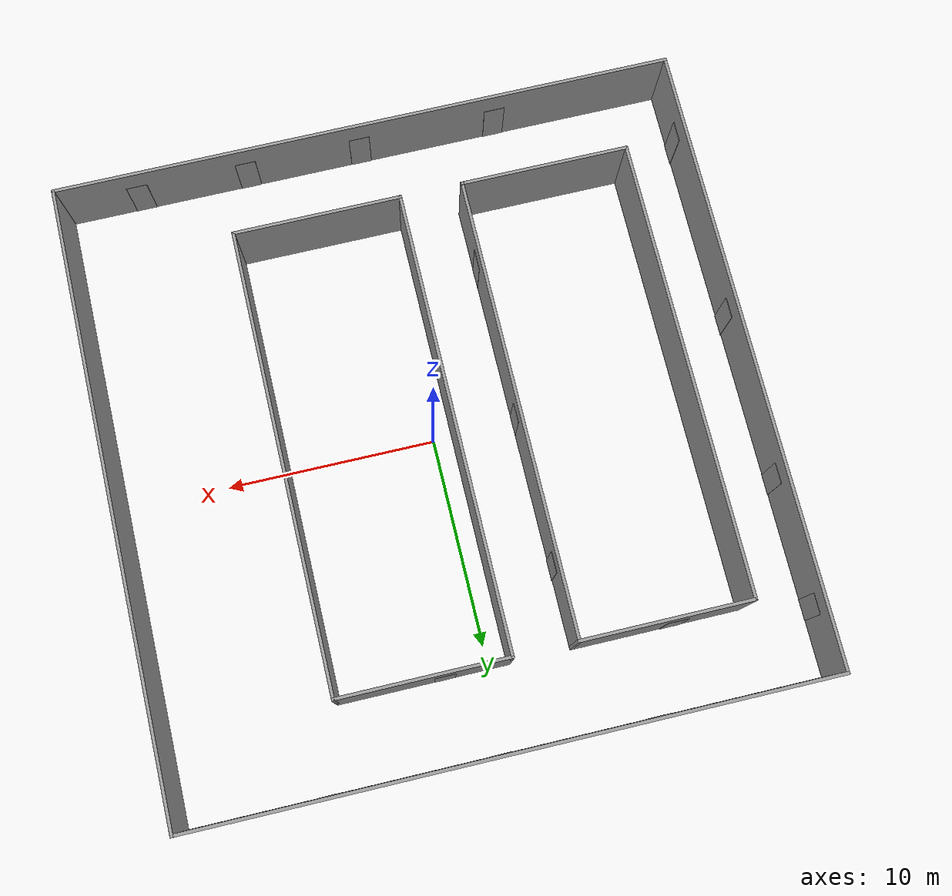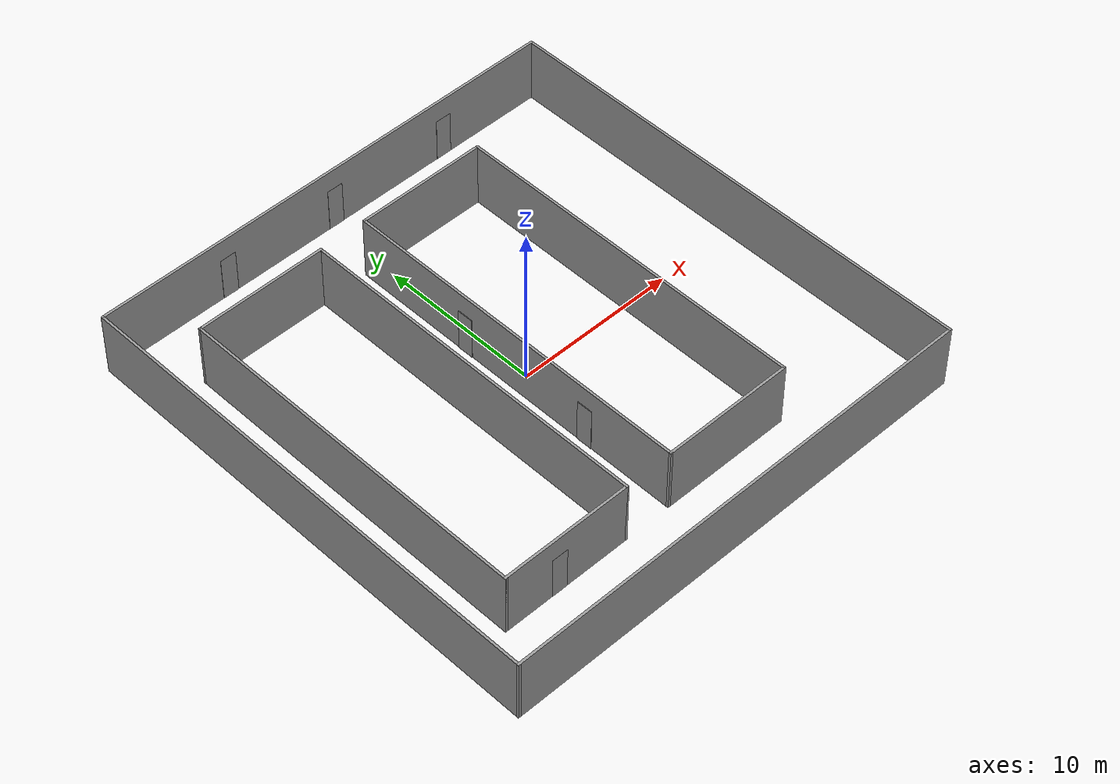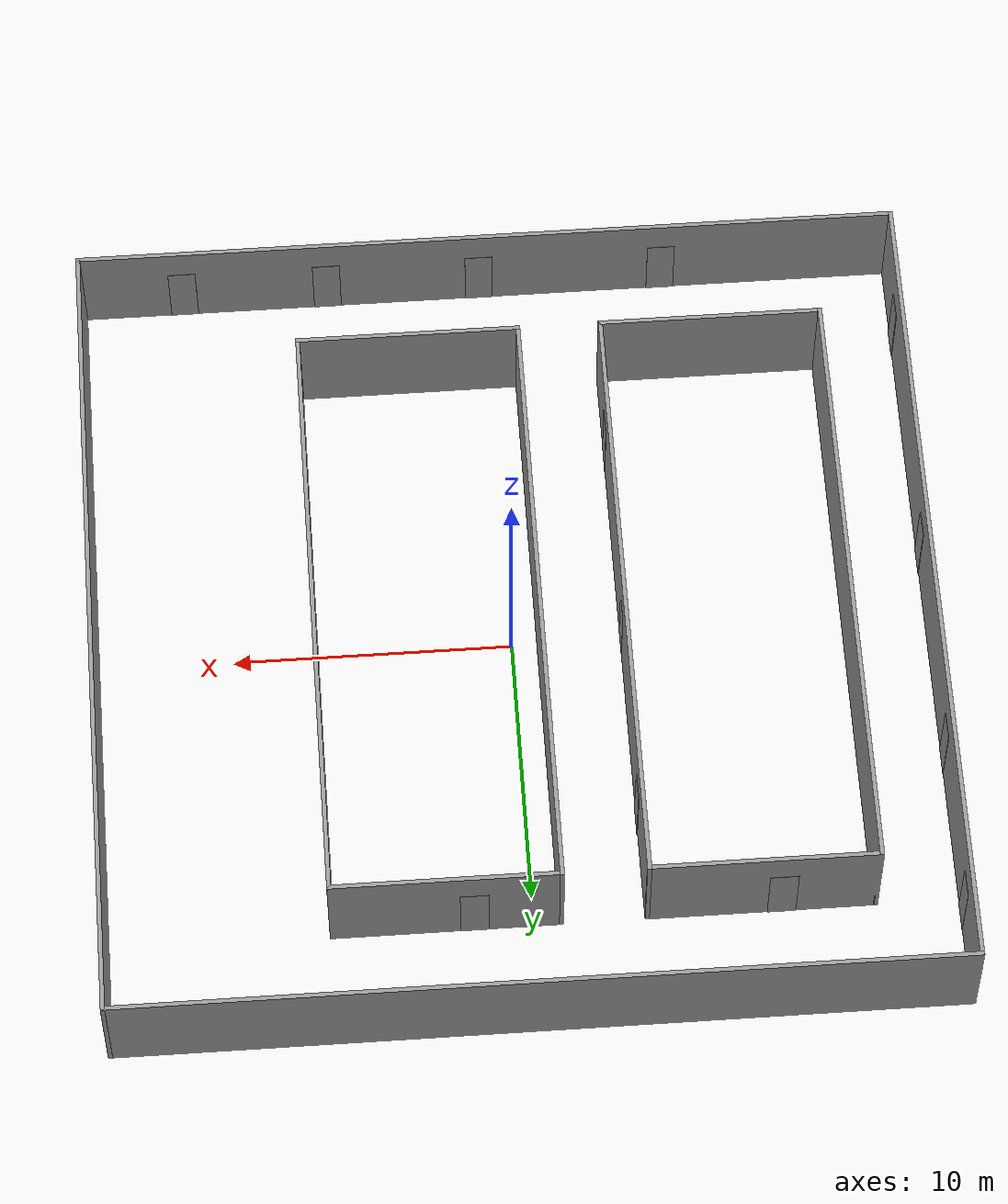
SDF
<sdf version="1.7">
 <world name="default">
  <model name="ground_plane">
   <static>1</static>
   <link name="link">
    <collision name="collision">
     <geometry><plane><normal>0 0 1</normal><size>30 30</size></plane></geometry>
     <surface>
      <contact><collide_bitmask>65535</collide_bitmask></contact>
      <friction><ode><mu>100</mu><mu2>50</mu2></ode></friction>
     </surface>
    </collision>
    <visual name="visual">
     <cast_shadows>0</cast_shadows>
     <geometry><plane><normal>0 0 1</normal><size>30 30</size></plane></geometry>
     <material>
      <script><uri>file://media/materials/scripts/gazebo.material</uri><name>Gazebo/White</name></script>
      <ambient>1 1 1 1</ambient>
      <diffuse>1 1 1 1</diffuse>
      <emissive>1 1 1 1</emissive>
     </material>
    </visual>
   </link>
  </model>
  <gravity>0 0 -9.8</gravity>
  <magnetic_field>6e-06 2.3e-05 -4.2e-05</magnetic_field>
  <atmosphere type="adiabatic"/>
  <physics type="ode">
   <max_step_size>0.001</max_step_size>
   <real_time_factor>1</real_time_factor>
   <real_time_update_rate>1000</real_time_update_rate>
  </physics>
  <scene>
   <ambient>0.6 0.6 0.6 1</ambient>
   <background>0.7 0.7 0.7 1</background>
   <shadows>0</shadows>
   <grid>0</grid>
  </scene>
  <spherical_coordinates>
   <surface_model>EARTH_WGS84</surface_model>
   <latitude_deg>0</latitude_deg>
   <longitude_deg>0</longitude_deg>
   <elevation>0</elevation>
   <heading_deg>0</heading_deg>
  </spherical_coordinates>
  <model name="hospital_wall">
   <static>1</static>
   <link name="Wall_10">
    <collision name="Wall_10_Collision">
     <geometry><box><size>30.15 0.15 4</size></box></geometry>
     <pose>0 0 2 0 -0 0</pose>
    </collision>
    <visual name="Wall_10_Visual">
     <pose>0 0 2 0 -0 0</pose>
     <geometry><box><size>30.15 0.15 4</size></box></geometry>
     <material>
      <script><uri>file://media/materials/scripts/gazebo.material</uri><name>Gazebo/Grey</name></script>
      <ambient>1 1 1 1</ambient>
     </material>
     <meta><layer>0</layer></meta>
    </visual>
    <pose>-14.9625 0 0 0 -0 1.5708</pose>
   </link>
   <link name="Wall_12">
    <collision name="Wall_12_Collision">
     <geometry><box><size>22.15 0.15 4</size></box></geometry>
     <pose>0 0 2 0 -0 0</pose>
    </collision>
    <visual name="Wall_12_Visual">
     <pose>0 0 2 0 -0 0</pose>
     <geometry><box><size>22.15 0.15 4</size></box></geometry>
     <material>
      <script><uri>file://media/materials/scripts/gazebo.material</uri><name>Gazebo/Grey</name></script>
      <ambient>1 1 1 1</ambient>
     </material>
     <meta><layer>0</layer></meta>
    </visual>
    <pose>7.0375 0 0 0 -0 -1.5708</pose>
   </link>
   <link name="Wall_13">
    <collision name="Wall_13_Collision">
     <geometry><box><size>8.15 0.15 4</size></box></geometry>
     <pose>0 0 2 0 -0 0</pose>
    </collision>
    <visual name="Wall_13_Visual">
     <pose>0 0 2 0 -0 0</pose>
     <geometry><box><size>8.15 0.15 4</size></box></geometry>
     <material>
      <script><uri>file://media/materials/scripts/gazebo.material</uri><name>Gazebo/Grey</name></script>
      <ambient>1 1 1 1</ambient>
     </material>
     <meta><layer>0</layer></meta>
    </visual>
    <pose>3.0375 -11 0 0 -0 3.14159</pose>
   </link>
   <link name="Wall_14">
    <collision name="Wall_14_Collision">
     <geometry><box><size>22.15 0.15 4</size></box></geometry>
     <pose>0 0 2 0 -0 0</pose>
    </collision>
    <visual name="Wall_14_Visual">
     <pose>0 0 2 0 -0 0</pose>
     <geometry><box><size>22.15 0.15 4</size></box></geometry>
     <material>
      <script><uri>file://media/materials/scripts/gazebo.material</uri><name>Gazebo/Grey</name></script>
      <ambient>1 1 1 1</ambient>
     </material>
     <meta><layer>0</layer></meta>
    </visual>
    <pose>-0.962499 0 0 0 -0 1.5708</pose>
   </link>
   <link name="Wall_15">
    <collision name="Wall_15_Collision">
     <geometry><box><size>8.15 0.15 4</size></box></geometry>
     <pose>0 0 2 0 -0 0</pose>
    </collision>
    <visual name="Wall_15_Visual">
     <pose>0 0 2 0 -0 0</pose>
     <geometry><box><size>8.15 0.15 4</size></box></geometry>
     <material>
      <script><uri>file://media/materials/scripts/gazebo.material</uri><name>Gazebo/Grey</name></script>
      <ambient>1 1 1 1</ambient>
     </material>
     <meta><layer>0</layer></meta>
    </visual>
    <pose>3.0375 11 0 0 -0 0</pose>
   </link>
   <link name="Wall_17">
    <collision name="Wall_17_Collision">
     <geometry><box><size>22.15 0.15 4</size></box></geometry>
     <pose>0 0 2 0 -0 0</pose>
    </collision>
    <visual name="Wall_17_Visual">
     <pose>0 0 2 0 -0 0</pose>
     <geometry><box><size>22.15 0.15 4</size></box></geometry>
     <material>
      <script><uri>file://media/materials/scripts/gazebo.material</uri><name>Gazebo/Grey</name></script>
      <ambient>1 1 1 1</ambient>
     </material>
     <meta><layer>0</layer></meta>
    </visual>
    <pose>-11.9625 0 0 0 -0 -1.5708</pose>
   </link>
   <link name="Wall_18">
    <collision name="Wall_18_Collision">
     <geometry><box><size>8.15 0.15 4</size></box></geometry>
     <pose>0 0 2 0 -0 0</pose>
    </collision>
    <visual name="Wall_18_Visual">
     <pose>0 0 2 0 -0 0</pose>
     <geometry><box><size>8.15 0.15 4</size></box></geometry>
     <material>
      <script><uri>file://media/materials/scripts/gazebo.material</uri><name>Gazebo/Grey</name></script>
      <ambient>1 1 1 1</ambient>
     </material>
     <meta><layer>0</layer></meta>
    </visual>
    <pose>-7.9625 -11 0 0 -0 0</pose>
   </link>
   <link name="Wall_19">
    <collision name="Wall_19_Collision">
     <geometry><box><size>22.15 0.15 4</size></box></geometry>
     <pose>0 0 2 0 -0 0</pose>
    </collision>
    <visual name="Wall_19_Visual">
     <pose>0 0 2 0 -0 0</pose>
     <geometry><box><size>22.15 0.15 4</size></box></geometry>
     <material>
      <script><uri>file://media/materials/scripts/gazebo.material</uri><name>Gazebo/Grey</name></script>
      <ambient>1 1 1 1</ambient>
     </material>
     <meta><layer>0</layer></meta>
    </visual>
    <pose>-3.9625 0 0 0 -0 1.5708</pose>
   </link>
   <link name="Wall_2">
    <collision name="Wall_2_Collision">
     <geometry><box><size>30 0.15 4</size></box></geometry>
     <pose>0 0 2 0 -0 0</pose>
    </collision>
    <visual name="Wall_2_Visual">
     <pose>0 0 2 0 -0 0</pose>
     <geometry><box><size>30 0.15 4</size></box></geometry>
     <material>
      <script><uri>file://media/materials/scripts/gazebo.material</uri><name>Gazebo/Grey</name></script>
      <ambient>1 1 1 1</ambient>
     </material>
     <meta><layer>0</layer></meta>
    </visual>
    <pose>-0.037498 15 0 0 -0 3.14159</pose>
   </link>
   <link name="Wall_20">
    <collision name="Wall_20_Collision">
     <geometry><box><size>8.15 0.15 4</size></box></geometry>
     <pose>0 0 2 0 -0 0</pose>
    </collision>
    <visual name="Wall_20_Visual">
     <pose>0 0 2 0 -0 0</pose>
     <geometry><box><size>8.15 0.15 4</size></box></geometry>
     <material>
      <script><uri>file://media/materials/scripts/gazebo.material</uri><name>Gazebo/Grey</name></script>
      <ambient>1 1 1 1</ambient>
     </material>
     <meta><layer>0</layer></meta>
    </visual>
    <pose>-7.9625 11 0 0 -0 3.14159</pose>
   </link>
   <link name="Wall_8">
    <collision name="Wall_8_Collision">
     <geometry><box><size>30.15 0.15 4</size></box></geometry>
     <pose>0 0 2 0 -0 0</pose>
    </collision>
    <visual name="Wall_8_Visual">
     <pose>0 0 2 0 -0 0</pose>
     <geometry><box><size>30.15 0.15 4</size></box></geometry>
     <material>
      <script><uri>file://media/materials/scripts/gazebo.material</uri><name>Gazebo/Grey</name></script>
      <ambient>1 1 1 1</ambient>
     </material>
     <meta><layer>0</layer></meta>
    </visual>
    <pose>14.8875 0 0 0 -0 -1.5708</pose>
   </link>
   <link name="Wall_9">
    <collision name="Wall_9_Collision">
     <geometry><box><size>30 0.15 4</size></box></geometry>
     <pose>0 0 2 0 -0 0</pose>
    </collision>
    <visual name="Wall_9_Visual">
     <pose>0 0 2 0 -0 0</pose>
     <geometry><box><size>30 0.15 4</size></box></geometry>
     <material>
      <script><uri>file://media/materials/scripts/gazebo.material</uri><name>Gazebo/Grey</name></script>
      <ambient>1 1 1 1</ambient>
     </material>
     <meta><layer>0</layer></meta>
    </visual>
    <pose>-0.037498 -15 0 0 -0 3.14159</pose>
   </link>
   <static>1</static>
  </model>
  <model name="unit_box">
   <static>1</static>
   <pose>-961.961 105.613 -2010.9 -0.070368 -1.10651 -0.800095</pose>
   <link name="link">
    <inertial>
     <mass>1</mass>
     <inertia>
      <ixx>0.166667</ixx>
      <ixy>0</ixy>
      <ixz>0</ixz>
      <iyy>0.166667</iyy>
      <iyz>0</iyz>
      <izz>0.166667</izz>
     </inertia>
    </inertial>
    <collision name="collision">
     <geometry><box><size>1816.64 0.0150161 0.185075</size></box></geometry>
    </collision>
    <visual name="visual">
     <geometry><box><size>1816.64 0.0150161 0.185075</size></box></geometry>
     <material>
      <script><name>Gazebo/Grey</name><uri>file://media/materials/scripts/gazebo.material</uri></script>
     </material>
    </visual>
   </link>
  </model>
  <model name="door_1">
   <static>1</static>
   <pose>-8.4721 -11.073 1.36135 -0 -1e-06 -3e-06</pose>
   <link name="link">
    <inertial>
     <mass>1</mass>
     <inertia>
      <ixx>0.166667</ixx>
      <ixy>0</ixy>
      <ixz>0</ixz>
      <iyy>0.166667</iyy>
      <iyz>0</iyz>
      <izz>0.166667</izz>
     </inertia>
    </inertial>
    <collision name="collision"><geometry><box><size>1 0.025101 2.7227</size></box></geometry></collision>
    <visual name="visual">
     <geometry><box><size>1 0.025101 2.7227</size></box></geometry>
     <material>
      <script><name>Gazebo/Grey</name><uri>file://media/materials/scripts/gazebo.material</uri></script>
     </material>
    </visual>
   </link>
  </model>
  <model name="door_2">
   <static>1</static>
   <pose>11.1775 -14.924 1.36135 0 1e-06 -3e-06</pose>
   <link name="link">
    <inertial>
     <mass>1</mass>
     <inertia>
      <ixx>0.166667</ixx>
      <ixy>0</ixy>
      <ixz>0</ixz>
      <iyy>0.166667</iyy>
      <iyz>0</iyz>
      <izz>0.166667</izz>
     </inertia>
    </inertial>
    <collision name="collision"><geometry><box><size>1 0.025101 2.7227</size></box></geometry></collision>
    <visual name="visual">
     <geometry><box><size>1 0.025101 2.7227</size></box></geometry>
     <material>
      <script><name>Gazebo/Grey</name><uri>file://media/materials/scripts/gazebo.material</uri></script>
     </material>
    </visual>
   </link>
  </model>
  <model name="door_3">
   <static>1</static>
   <pose>5.85953 -14.9205 1.36135 0 1e-06 -3e-06</pose>
   <link name="link">
    <inertial>
     <mass>1</mass>
     <inertia>
      <ixx>0.166667</ixx>
      <ixy>0</ixy>
      <ixz>0</ixz>
      <iyy>0.166667</iyy>
      <iyz>0</iyz>
      <izz>0.166667</izz>
     </inertia>
    </inertial>
    <collision name="collision"><geometry><box><size>1 0.025101 2.7227</size></box></geometry></collision>
    <visual name="visual">
     <geometry><box><size>1 0.025101 2.7227</size></box></geometry>
     <material>
      <script><name>Gazebo/Grey</name><uri>file://media/materials/scripts/gazebo.material</uri></script>
     </material>
    </visual>
   </link>
  </model>
  <model name="door_4">
   <static>1</static>
   <pose>0.225424 -14.922 1.36135 0 1e-06 -3e-06</pose>
   <link name="link">
    <inertial>
     <mass>1</mass>
     <inertia>
      <ixx>0.166667</ixx>
      <ixy>0</ixy>
      <ixz>0</ixz>
      <iyy>0.166667</iyy>
      <iyz>0</iyz>
      <izz>0.166667</izz>
     </inertia>
    </inertial>
    <collision name="collision"><geometry><box><size>1 0.025101 2.7227</size></box></geometry></collision>
    <visual name="visual">
     <geometry><box><size>1 0.025101 2.7227</size></box></geometry>
     <material>
      <script><name>Gazebo/Grey</name><uri>file://media/materials/scripts/gazebo.material</uri></script>
     </material>
    </visual>
   </link>
  </model>
  <model name="door_5">
   <static>1</static>
   <pose>-6.52828 -14.9161 1.36135 -0 -1e-06 -3e-06</pose>
   <link name="link">
    <inertial>
     <mass>1</mass>
     <inertia>
      <ixx>0.166667</ixx>
      <ixy>0</ixy>
      <ixz>0</ixz>
      <iyy>0.166667</iyy>
      <iyz>0</iyz>
      <izz>0.166667</izz>
     </inertia>
    </inertial>
    <collision name="collision"><geometry><box><size>1 0.025101 2.7227</size></box></geometry></collision>
    <visual name="visual">
     <geometry><box><size>1 0.025101 2.7227</size></box></geometry>
     <material>
      <script><name>Gazebo/Grey</name><uri>file://media/materials/scripts/gazebo.material</uri></script>
     </material>
    </visual>
   </link>
  </model>
  <model name="door_6">
   <static>1</static>
   <pose>2.05561 11.071 1.36135 -0 1e-06 -2e-06</pose>
   <link name="link">
    <inertial>
     <mass>1</mass>
     <inertia>
      <ixx>0.166667</ixx>
      <ixy>0</ixy>
      <ixz>0</ixz>
      <iyy>0.166667</iyy>
      <iyz>0</iyz>
      <izz>0.166667</izz>
     </inertia>
    </inertial>
    <collision name="collision"><geometry><box><size>1 0.025101 2.7227</size></box></geometry></collision>
    <visual name="visual">
     <geometry><box><size>1 0.025101 2.7227</size></box></geometry>
     <material>
      <script><name>Gazebo/Grey</name><uri>file://media/materials/scripts/gazebo.material</uri></script>
     </material>
    </visual>
   </link>
  </model>
  <model name="door_7">
   <static>1</static>
   <pose>-8.66703 11.0792 1.36135 0 2e-06 -3e-06</pose>
   <link name="link">
    <inertial>
     <mass>1</mass>
     <inertia>
      <ixx>0.166667</ixx>
      <ixy>0</ixy>
      <ixz>0</ixz>
      <iyy>0.166667</iyy>
      <iyz>0</iyz>
      <izz>0.166667</izz>
     </inertia>
    </inertial>
    <collision name="collision"><geometry><box><size>1 0.025101 2.7227</size></box></geometry></collision>
    <visual name="visual">
     <geometry><box><size>1 0.025101 2.7227</size></box></geometry>
     <material>
      <script><name>Gazebo/Grey</name><uri>file://media/materials/scripts/gazebo.material</uri></script>
     </material>
    </visual>
   </link>
  </model>
  <model name="door_8">
   <static>1</static>
   <pose>8.16666 14.9268 1.36135 0 -2e-06 -3e-06</pose>
   <link name="link">
    <inertial>
     <mass>1</mass>
     <inertia>
      <ixx>0.166667</ixx>
      <ixy>0</ixy>
      <ixz>0</ixz>
      <iyy>0.166667</iyy>
      <iyz>0</iyz>
      <izz>0.166667</izz>
     </inertia>
    </inertial>
    <collision name="collision"><geometry><box><size>1 0.025101 2.7227</size></box></geometry></collision>
    <visual name="visual">
     <geometry><box><size>1 0.025101 2.7227</size></box></geometry>
     <material>
      <script><name>Gazebo/Grey</name><uri>file://media/materials/scripts/gazebo.material</uri></script>
     </material>
    </visual>
   </link>
  </model>
  <model name="door_9">
   <static>1</static>
   <pose>0.367251 14.9258 1.36135 0 1e-06 -3e-06</pose>
   <link name="link">
    <inertial>
     <mass>1</mass>
     <inertia>
      <ixx>0.166667</ixx>
      <ixy>0</ixy>
      <ixz>0</ixz>
      <iyy>0.166667</iyy>
      <iyz>0</iyz>
      <izz>0.166667</izz>
     </inertia>
    </inertial>
    <collision name="collision"><geometry><box><size>1 0.025101 2.7227</size></box></geometry></collision>
    <visual name="visual">
     <geometry><box><size>1 0.025101 2.7227</size></box></geometry>
     <material>
      <script><name>Gazebo/Grey</name><uri>file://media/materials/scripts/gazebo.material</uri></script>
     </material>
    </visual>
   </link>
  </model>
  <model name="door_10">
   <static>1</static>
   <pose>-6.98883 14.9234 1.36135 0 1e-06 -3e-06</pose>
   <link name="link">
    <inertial>
     <mass>1</mass>
     <inertia>
      <ixx>0.166667</ixx>
      <ixy>0</ixy>
      <ixz>0</ixz>
      <iyy>0.166667</iyy>
      <iyz>0</iyz>
      <izz>0.166667</izz>
     </inertia>
    </inertial>
    <collision name="collision"><geometry><box><size>1 0.025101 2.7227</size></box></geometry></collision>
    <visual name="visual">
     <geometry><box><size>1 0.025101 2.7227</size></box></geometry>
     <material>
      <script><name>Gazebo/Grey</name><uri>file://media/materials/scripts/gazebo.material</uri></script>
     </material>
    </visual>
   </link>
  </model>
  <model name="door_11">
   <static>1</static>
   <pose>-1.0554 3.37721 1.36135 0 -0 1.5708</pose>
   <link name="link">
    <inertial>
     <mass>1</mass>
     <inertia>
      <ixx>0.166667</ixx>
      <ixy>0</ixy>
      <ixz>0</ixz>
      <iyy>0.166667</iyy>
      <iyz>0</iyz>
      <izz>0.166667</izz>
     </inertia>
    </inertial>
    <collision name="collision"><geometry><box><size>1 0.025101 2.7227</size></box></geometry></collision>
    <visual name="visual">
     <geometry><box><size>1 0.025101 2.7227</size></box></geometry>
     <material>
      <script><name>Gazebo/Grey</name><uri>file://media/materials/scripts/gazebo.material</uri></script>
     </material>
    </visual>
   </link>
  </model>
  <model name="door_12">
   <static>1</static>
   <pose>-1.04887 -5.22515 1.36135 0 -1e-06 1.5708</pose>
   <link name="link">
    <inertial>
     <mass>1</mass>
     <inertia>
      <ixx>0.166667</ixx>
      <ixy>0</ixy>
      <ixz>0</ixz>
      <iyy>0.166667</iyy>
      <iyz>0</iyz>
      <izz>0.166667</izz>
     </inertia>
    </inertial>
    <collision name="collision"><geometry><box><size>1 0.025101 2.7227</size></box></geometry></collision>
    <visual name="visual">
     <geometry><box><size>1 0.025101 2.7227</size></box></geometry>
     <material>
      <script><name>Gazebo/Grey</name><uri>file://media/materials/scripts/gazebo.material</uri></script>
     </material>
    </visual>
   </link>
  </model>
  <model name="door_13">
   <static>1</static>
   <pose>-3.87413 7.25767 1.36134 0 -0 1.5708</pose>
   <link name="link">
    <inertial>
     <mass>1</mass>
     <inertia>
      <ixx>0.166667</ixx>
      <ixy>0</ixy>
      <ixz>0</ixz>
      <iyy>0.166667</iyy>
      <iyz>0</iyz>
      <izz>0.166667</izz>
     </inertia>
    </inertial>
    <collision name="collision"><geometry><box><size>1 0.025101 2.7227</size></box></geometry></collision>
    <visual name="visual">
     <geometry><box><size>1 0.025101 2.7227</size></box></geometry>
     <material>
      <script><name>Gazebo/Grey</name><uri>file://media/materials/scripts/gazebo.material</uri></script>
     </material>
    </visual>
   </link>
  </model>
  <model name="door_14">
   <static>1</static>
   <pose>-3.89595 0.089633 1.36135 0 2e-06 1.5708</pose>
   <link name="link">
    <inertial>
     <mass>1</mass>
     <inertia>
      <ixx>0.166667</ixx>
      <ixy>0</ixy>
      <ixz>0</ixz>
      <iyy>0.166667</iyy>
      <iyz>0</iyz>
      <izz>0.166667</izz>
     </inertia>
    </inertial>
    <collision name="collision"><geometry><box><size>1 0.025101 2.7227</size></box></geometry></collision>
    <visual name="visual">
     <geometry><box><size>1 0.025101 2.7227</size></box></geometry>
     <material>
      <script><name>Gazebo/Grey</name><uri>file://media/materials/scripts/gazebo.material</uri></script>
     </material>
    </visual>
   </link>
  </model>
  <model name="door_15">
   <static>1</static>
   <pose>-3.89064 -7.58474 1.36135 0 -1e-06 1.5708</pose>
   <link name="link">
    <inertial>
     <mass>1</mass>
     <inertia>
      <ixx>0.166667</ixx>
      <ixy>0</ixy>
      <ixz>0</ixz>
      <iyy>0.166667</iyy>
      <iyz>0</iyz>
      <izz>0.166667</izz>
     </inertia>
    </inertial>
    <collision name="collision"><geometry><box><size>1 0.025101 2.7227</size></box></geometry></collision>
    <visual name="visual">
     <geometry><box><size>1 0.025101 2.7227</size></box></geometry>
     <material>
      <script><name>Gazebo/Grey</name><uri>file://media/materials/scripts/gazebo.material</uri></script>
     </material>
    </visual>
   </link>
  </model>
  <model name="door_16">
   <static>1</static>
   <pose>-14.8904 11.7461 1.36135 0 2e-06 1.5708</pose>
   <link name="link">
    <inertial>
     <mass>1</mass>
     <inertia>
      <ixx>0.166667</ixx>
      <ixy>0</ixy>
      <ixz>0</ixz>
      <iyy>0.166667</iyy>
      <iyz>0</iyz>
      <izz>0.166667</izz>
     </inertia>
    </inertial>
    <collision name="collision"><geometry><box><size>1 0.025101 2.7227</size></box></geometry></collision>
    <visual name="visual">
     <geometry><box><size>1 0.025101 2.7227</size></box></geometry>
     <material>
      <script><name>Gazebo/Grey</name><uri>file://media/materials/scripts/gazebo.material</uri></script>
     </material>
    </visual>
   </link>
  </model>
  <model name="door_17">
   <static>1</static>
   <pose>-14.8858 5.62063 1.36135 -1e-06 -2e-06 1.5708</pose>
   <link name="link">
    <inertial>
     <mass>1</mass>
     <inertia>
      <ixx>0.166667</ixx>
      <ixy>0</ixy>
      <ixz>0</ixz>
      <iyy>0.166667</iyy>
      <iyz>0</iyz>
      <izz>0.166667</izz>
     </inertia>
    </inertial>
    <collision name="collision"><geometry><box><size>1 0.025101 2.7227</size></box></geometry></collision>
    <visual name="visual">
     <geometry><box><size>1 0.025101 2.7227</size></box></geometry>
     <material>
      <script><name>Gazebo/Grey</name><uri>file://media/materials/scripts/gazebo.material</uri></script>
     </material>
    </visual>
   </link>
  </model>
  <model name="door_18">
   <static>1</static>
   <pose>-14.8737 -2.5482 1.36135 0 -1e-06 1.5708</pose>
   <link name="link">
    <inertial>
     <mass>1</mass>
     <inertia>
      <ixx>0.166667</ixx>
      <ixy>0</ixy>
      <ixz>0</ixz>
      <iyy>0.166667</iyy>
      <iyz>0</iyz>
      <izz>0.166667</izz>
     </inertia>
    </inertial>
    <collision name="collision"><geometry><box><size>1 0.025101 2.7227</size></box></geometry></collision>
    <visual name="visual">
     <geometry><box><size>1 0.025101 2.7227</size></box></geometry>
     <material>
      <script><name>Gazebo/Grey</name><uri>file://media/materials/scripts/gazebo.material</uri></script>
     </material>
    </visual>
   </link>
  </model>
  <model name="door_19">
   <static>1</static>
   <pose>-14.8676 -11.7882 1.36135 0 1e-06 1.5708</pose>
   <link name="link">
    <inertial>
     <mass>1</mass>
     <inertia>
      <ixx>0.166667</ixx>
      <ixy>0</ixy>
      <ixz>0</ixz>
      <iyy>0.166667</iyy>
      <iyz>0</iyz>
      <izz>0.166667</izz>
     </inertia>
    </inertial>
    <collision name="collision"><geometry><box><size>1 0.025101 2.7227</size></box></geometry></collision>
    <visual name="visual">
     <geometry><box><size>1 0.025101 2.7227</size></box></geometry>
     <material>
      <script><name>Gazebo/Grey</name><uri>file://media/materials/scripts/gazebo.material</uri></script>
     </material>
    </visual>
   </link>
  </model>
 </world>
</sdf>
